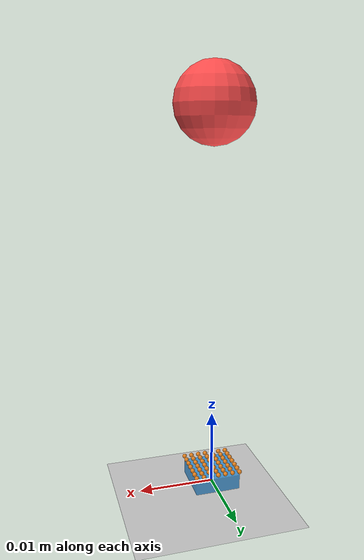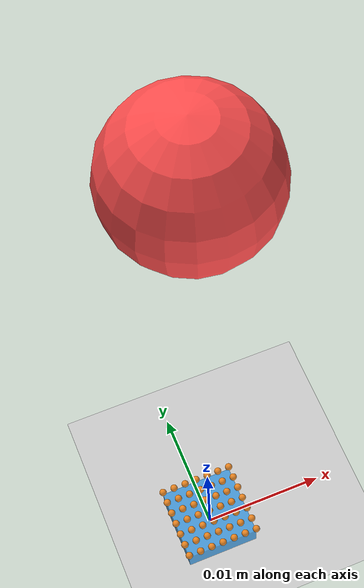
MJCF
<mujoco model="em_sensor_flat">
  <!--
    标准品规格：7×7 测点，43×28×8mm，120Hz
    感知区域：6mm×6mm（7点×1mm间距），位于传感器表面中心
    传感器总输出维度：151（7×7×3=147 + 合力3 + 温度1）
  -->
  <option gravity="0 0 -9.81" timestep="0.00833"
          solver="Newton" integrator="implicit"
          cone="elliptic" impratio="10"/>

  <default>
    <geom condim="3" solref="0.01 0.9"
          solimp="0.9 0.999 0.005" friction="1 0.1 0.01"/>
  </default>

  <worldbody>
    <light pos="0 0 1" dir="0 0 -1"/>
    <geom name="ground" type="plane" size="0.1 0.1 0.01" rgba="0.8 0.8 0.8 1"/>

    <!-- 传感器主体（固定在世界） -->
    <body name="sensor_body" pos="0 0 0.001">
      <!-- 感知面：6mm×6mm（7×7 测点覆盖区域），厚度 1mm -->
      <geom name="sensor_pad" type="box"
            size="0.003 0.003 0.001"
            rgba="0.2 0.6 0.9 0.8" mass="0.05"/>
      <site name="cell_0_0" pos="-0.003000 -0.003000 0.001500" size="0.0003" rgba="1 0.5 0 0.8"/>
      <site name="cell_0_1" pos="-0.002000 -0.003000 0.001500" size="0.0003" rgba="1 0.5 0 0.8"/>
      <site name="cell_0_2" pos="-0.001000 -0.003000 0.001500" size="0.0003" rgba="1 0.5 0 0.8"/>
      <site name="cell_0_3" pos="0.000000 -0.003000 0.001500" size="0.0003" rgba="1 0.5 0 0.8"/>
      <site name="cell_0_4" pos="0.001000 -0.003000 0.001500" size="0.0003" rgba="1 0.5 0 0.8"/>
      <site name="cell_0_5" pos="0.002000 -0.003000 0.001500" size="0.0003" rgba="1 0.5 0 0.8"/>
      <site name="cell_0_6" pos="0.003000 -0.003000 0.001500" size="0.0003" rgba="1 0.5 0 0.8"/>
      <site name="cell_1_0" pos="-0.003000 -0.002000 0.001500" size="0.0003" rgba="1 0.5 0 0.8"/>
      <site name="cell_1_1" pos="-0.002000 -0.002000 0.001500" size="0.0003" rgba="1 0.5 0 0.8"/>
      <site name="cell_1_2" pos="-0.001000 -0.002000 0.001500" size="0.0003" rgba="1 0.5 0 0.8"/>
      <site name="cell_1_3" pos="0.000000 -0.002000 0.001500" size="0.0003" rgba="1 0.5 0 0.8"/>
      <site name="cell_1_4" pos="0.001000 -0.002000 0.001500" size="0.0003" rgba="1 0.5 0 0.8"/>
      <site name="cell_1_5" pos="0.002000 -0.002000 0.001500" size="0.0003" rgba="1 0.5 0 0.8"/>
      <site name="cell_1_6" pos="0.003000 -0.002000 0.001500" size="0.0003" rgba="1 0.5 0 0.8"/>
      <site name="cell_2_0" pos="-0.003000 -0.001000 0.001500" size="0.0003" rgba="1 0.5 0 0.8"/>
      <site name="cell_2_1" pos="-0.002000 -0.001000 0.001500" size="0.0003" rgba="1 0.5 0 0.8"/>
      <site name="cell_2_2" pos="-0.001000 -0.001000 0.001500" size="0.0003" rgba="1 0.5 0 0.8"/>
      <site name="cell_2_3" pos="0.000000 -0.001000 0.001500" size="0.0003" rgba="1 0.5 0 0.8"/>
      <site name="cell_2_4" pos="0.001000 -0.001000 0.001500" size="0.0003" rgba="1 0.5 0 0.8"/>
      <site name="cell_2_5" pos="0.002000 -0.001000 0.001500" size="0.0003" rgba="1 0.5 0 0.8"/>
      <site name="cell_2_6" pos="0.003000 -0.001000 0.001500" size="0.0003" rgba="1 0.5 0 0.8"/>
      <site name="cell_3_0" pos="-0.003000 0.000000 0.001500" size="0.0003" rgba="1 0.5 0 0.8"/>
      <site name="cell_3_1" pos="-0.002000 0.000000 0.001500" size="0.0003" rgba="1 0.5 0 0.8"/>
      <site name="cell_3_2" pos="-0.001000 0.000000 0.001500" size="0.0003" rgba="1 0.5 0 0.8"/>
      <site name="cell_3_3" pos="0.000000 0.000000 0.001500" size="0.0003" rgba="1 0.5 0 0.8"/>
      <site name="cell_3_4" pos="0.001000 0.000000 0.001500" size="0.0003" rgba="1 0.5 0 0.8"/>
      <site name="cell_3_5" pos="0.002000 0.000000 0.001500" size="0.0003" rgba="1 0.5 0 0.8"/>
      <site name="cell_3_6" pos="0.003000 0.000000 0.001500" size="0.0003" rgba="1 0.5 0 0.8"/>
      <site name="cell_4_0" pos="-0.003000 0.001000 0.001500" size="0.0003" rgba="1 0.5 0 0.8"/>
      <site name="cell_4_1" pos="-0.002000 0.001000 0.001500" size="0.0003" rgba="1 0.5 0 0.8"/>
      <site name="cell_4_2" pos="-0.001000 0.001000 0.001500" size="0.0003" rgba="1 0.5 0 0.8"/>
      <site name="cell_4_3" pos="0.000000 0.001000 0.001500" size="0.0003" rgba="1 0.5 0 0.8"/>
      <site name="cell_4_4" pos="0.001000 0.001000 0.001500" size="0.0003" rgba="1 0.5 0 0.8"/>
      <site name="cell_4_5" pos="0.002000 0.001000 0.001500" size="0.0003" rgba="1 0.5 0 0.8"/>
      <site name="cell_4_6" pos="0.003000 0.001000 0.001500" size="0.0003" rgba="1 0.5 0 0.8"/>
      <site name="cell_5_0" pos="-0.003000 0.002000 0.001500" size="0.0003" rgba="1 0.5 0 0.8"/>
      <site name="cell_5_1" pos="-0.002000 0.002000 0.001500" size="0.0003" rgba="1 0.5 0 0.8"/>
      <site name="cell_5_2" pos="-0.001000 0.002000 0.001500" size="0.0003" rgba="1 0.5 0 0.8"/>
      <site name="cell_5_3" pos="0.000000 0.002000 0.001500" size="0.0003" rgba="1 0.5 0 0.8"/>
      <site name="cell_5_4" pos="0.001000 0.002000 0.001500" size="0.0003" rgba="1 0.5 0 0.8"/>
      <site name="cell_5_5" pos="0.002000 0.002000 0.001500" size="0.0003" rgba="1 0.5 0 0.8"/>
      <site name="cell_5_6" pos="0.003000 0.002000 0.001500" size="0.0003" rgba="1 0.5 0 0.8"/>
      <site name="cell_6_0" pos="-0.003000 0.003000 0.001500" size="0.0003" rgba="1 0.5 0 0.8"/>
      <site name="cell_6_1" pos="-0.002000 0.003000 0.001500" size="0.0003" rgba="1 0.5 0 0.8"/>
      <site name="cell_6_2" pos="-0.001000 0.003000 0.001500" size="0.0003" rgba="1 0.5 0 0.8"/>
      <site name="cell_6_3" pos="0.000000 0.003000 0.001500" size="0.0003" rgba="1 0.5 0 0.8"/>
      <site name="cell_6_4" pos="0.001000 0.003000 0.001500" size="0.0003" rgba="1 0.5 0 0.8"/>
      <site name="cell_6_5" pos="0.002000 0.003000 0.001500" size="0.0003" rgba="1 0.5 0 0.8"/>
      <site name="cell_6_6" pos="0.003000 0.003000 0.001500" size="0.0003" rgba="1 0.5 0 0.8"/>
    </body>

    <!-- 测试用自由落体球（半径 5mm，质量 10g） -->
    <body name="ball" pos="0 0 0.05">
      <joint name="ball_joint" type="free"/>
      <geom name="ball_geom" type="sphere" size="0.005"
            mass="0.01" rgba="1 0.3 0.3 1"/>
    </body>
  </worldbody>

  <sensor>
    <!-- 151 维用户传感器：由 EMSensorCallback 的 mjcb_sensor 回调填充 -->
    <!-- dim = 7*7*3 + 3 + 1 = 151 -->
    <user name="EM_SENSOR" dim="151"
          objtype="geom" objname="sensor_pad"/>
  </sensor>
</mujoco>
